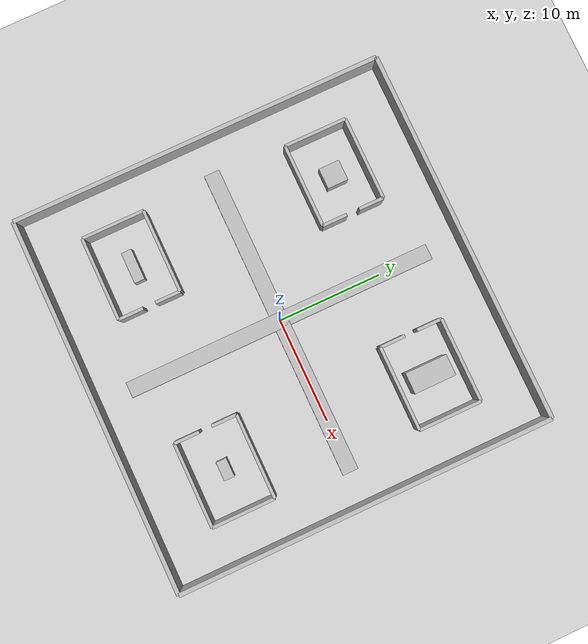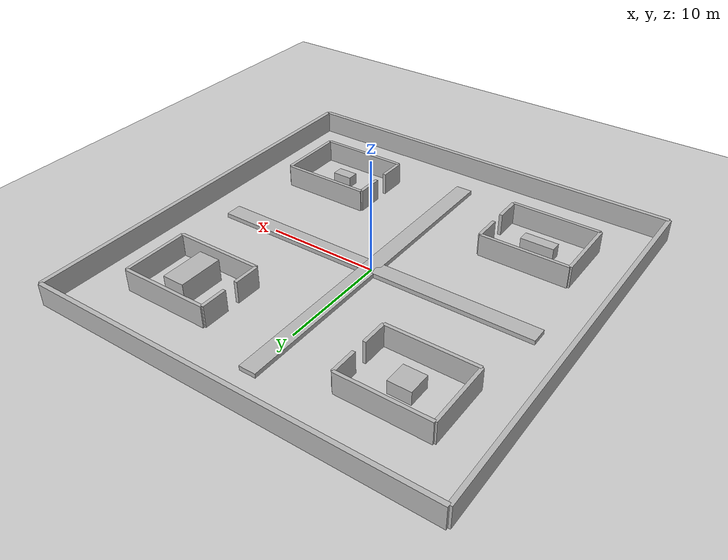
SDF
<sdf version="1.6">
<world name="realistic_factory">

<include><uri>model://ground_plane</uri></include>
<include><uri>model://sun</uri></include>

<!-- 外围厂房 -->
<model name="outer"><static>true</static>

<link name="n"><pose>0 18 1 0 0 0</pose>
<collision name="c"><geometry><box><size>36 0.4 2</size></box></geometry></collision>
<visual name="v"><geometry><box><size>36 0.4 2</size></box></geometry></visual>
</link>

<link name="s"><pose>0 -18 1 0 0 0</pose>
<collision name="c"><geometry><box><size>36 0.4 2</size></box></geometry></collision>
<visual name="v"><geometry><box><size>36 0.4 2</size></box></geometry></visual>
</link>

<link name="w"><pose>-18 0 1 0 0 0</pose>
<collision name="c"><geometry><box><size>0.4 36 2</size></box></geometry></collision>
<visual name="v"><geometry><box><size>0.4 36 2</size></box></geometry></visual>
</link>

<link name="e"><pose>18 0 1 0 0 0</pose>
<collision name="c"><geometry><box><size>0.4 36 2</size></box></geometry></collision>
<visual name="v"><geometry><box><size>0.4 36 2</size></box></geometry></visual>
</link>

</model>

<!-- ================= 十字传送带 ================= -->
<model name="conveyors"><static>true</static>

<link name="x"><pose>0 0 0.2 0 0 0</pose>
<collision name="c"><geometry><box><size>30 1.5 0.4</size></box></geometry></collision>
<visual name="v"><geometry><box><size>30 1.5 0.4</size></box></geometry></visual>
</link>

<link name="y"><pose>0 0 0.2 0 0 0</pose>
<collision name="c"><geometry><box><size>1.5 30 0.4</size></box></geometry></collision>
<visual name="v"><geometry><box><size>1.5 30 0.4</size></box></geometry></visual>
</link>

</model>

<!-- ================= 四车间 ================= -->
<!-- NW 机械加工 -->
<model name="machining"><static>true</static>
<pose>-10 10 0 0 0 0</pose>

<link name="north"><pose>0 3 1 0 0 0</pose>
<collision name="c"><geometry><box><size>8 0.3 2</size></box></geometry></collision>
<visual name="v"><geometry><box><size>8 0.3 2</size></box></geometry></visual>
</link>

<link name="south"><pose>0 -3 1 0 0 0</pose>
<collision name="c"><geometry><box><size>8 0.3 2</size></box></geometry></collision>
<visual name="v"><geometry><box><size>8 0.3 2</size></box></geometry></visual>
</link>

<link name="west"><pose>-4 0 1 0 0 1.57</pose>
<collision name="c"><geometry><box><size>6 0.3 2</size></box></geometry></collision>
<visual name="v"><geometry><box><size>6 0.3 2</size></box></geometry></visual>
</link>

<link name="east_left"><pose>4 1.8 1 0 0 1.57</pose>
<collision name="c"><geometry><box><size>2.4 0.3 2</size></box></geometry></collision>
<visual name="v"><geometry><box><size>2.4 0.3 2</size></box></geometry></visual>
</link>

<link name="east_right"><pose>4 -1.8 1 0 0 1.57</pose>
<collision name="c"><geometry><box><size>2.4 0.3 2</size></box></geometry></collision>
<visual name="v"><geometry><box><size>2.4 0.3 2</size></box></geometry></visual>
</link>

</model>

<model name="machine_block"><static>true</static>
<pose>-10 10 0.6 0 0 0</pose>
<link name="l"><collision name="c"><geometry><box><size>2 2 1.2</size></box></geometry></collision>
<visual name="v"><geometry><box><size>2 2 1.2</size></box></geometry></visual></link>
</model>

<!-- NE 仓储 -->
<model name="storage"><static>true</static>
<pose>10 10 0 0 0 0</pose>

<link name="north"><pose>0 3 1 0 0 0</pose>
<collision name="c"><geometry><box><size>8 0.3 2</size></box></geometry></collision>
<visual name="v"><geometry><box><size>8 0.3 2</size></box></geometry></visual>
</link>

<link name="south"><pose>0 -3 1 0 0 0</pose>
<collision name="c"><geometry><box><size>8 0.3 2</size></box></geometry></collision>
<visual name="v"><geometry><box><size>8 0.3 2</size></box></geometry></visual>
</link>

<link name="east"><pose>4 0 1 0 0 1.57</pose>
<collision name="c"><geometry><box><size>6 0.3 2</size></box></geometry></collision>
<visual name="v"><geometry><box><size>6 0.3 2</size></box></geometry></visual>
</link>

<link name="west_l"><pose>-4 1.8 1 0 0 1.57</pose>
<collision name="c"><geometry><box><size>2.4 0.3 2</size></box></geometry></collision>
<visual name="v"><geometry><box><size>2.4 0.3 2</size></box></geometry></visual>
</link>

<link name="west_r"><pose>-4 -1.8 1 0 0 1.57</pose>
<collision name="c"><geometry><box><size>2.4 0.3 2</size></box></geometry></collision>
<visual name="v"><geometry><box><size>2.4 0.3 2</size></box></geometry></visual>
</link>

</model>

<model name="rack"><static>true</static>
<pose>10 10 1 0 0 0</pose>
<link name="l"><collision name="c"><geometry><box><size>2 4 2</size></box></geometry></collision>
<visual name="v"><geometry><box><size>2 4 2</size></box></geometry></visual></link>
</model>

<!-- SW 装配 -->
<model name="assembly"><static>true</static>
<pose>-10 -10 0 0 0 0</pose>
<link name="north"><pose>0 3 1 0 0 0</pose>
<collision name="c"><geometry><box><size>8 0.3 2</size></box></geometry></collision>
<visual name="v"><geometry><box><size>8 0.3 2</size></box></geometry></visual>
</link>
<link name="south"><pose>0 -3 1 0 0 0</pose>
<collision name="c"><geometry><box><size>8 0.3 2</size></box></geometry></collision>
<visual name="v"><geometry><box><size>8 0.3 2</size></box></geometry></visual>
</link>
<link name="west"><pose>-4 0 1 0 0 1.57</pose>
<collision name="c"><geometry><box><size>6 0.3 2</size></box></geometry></collision>
<visual name="v"><geometry><box><size>6 0.3 2</size></box></geometry></visual>
</link>
<link name="east_l"><pose>4 1.8 1 0 0 1.57</pose>
<collision name="c"><geometry><box><size>2.4 0.3 2</size></box></geometry></collision>
<visual name="v"><geometry><box><size>2.4 0.3 2</size></box></geometry></visual>
</link>
<link name="east_r"><pose>4 -1.8 1 0 0 1.57</pose>
<collision name="c"><geometry><box><size>2.4 0.3 2</size></box></geometry></collision>
<visual name="v"><geometry><box><size>2.4 0.3 2</size></box></geometry></visual>
</link>
</model>

<model name="assembly_line"><static>true</static>
<pose>-10 -10 0.6 0 0 0</pose>
<link name="l"><collision name="c"><geometry><box><size>3 1 1.2</size></box></geometry></collision>
<visual name="v"><geometry><box><size>3 1 1.2</size></box></geometry></visual></link>
</model>

<!-- SE 实验室 -->
<model name="lab"><static>true</static>
<pose>10 -10 0 0 0 0</pose>
<link name="north"><pose>0 3 1 0 0 0</pose>
<collision name="c"><geometry><box><size>8 0.3 2</size></box></geometry></collision>
<visual name="v"><geometry><box><size>8 0.3 2</size></box></geometry></visual>
</link>
<link name="south"><pose>0 -3 1 0 0 0</pose>
<collision name="c"><geometry><box><size>8 0.3 2</size></box></geometry></collision>
<visual name="v"><geometry><box><size>8 0.3 2</size></box></geometry></visual>
</link>
<link name="east"><pose>4 0 1 0 0 1.57</pose>
<collision name="c"><geometry><box><size>6 0.3 2</size></box></geometry></collision>
<visual name="v"><geometry><box><size>6 0.3 2</size></box></geometry></visual>
</link>
<link name="west_l"><pose>-4 1.8 1 0 0 1.57</pose>
<collision name="c"><geometry><box><size>2.4 0.3 2</size></box></geometry></collision>
<visual name="v"><geometry><box><size>2.4 0.3 2</size></box></geometry></visual>
</link>
<link name="west_r"><pose>-4 -1.8 1 0 0 1.57</pose>
<collision name="c"><geometry><box><size>2.4 0.3 2</size></box></geometry></collision>
<visual name="v"><geometry><box><size>2.4 0.3 2</size></box></geometry></visual>
</link>
</model>

<model name="lab_table"><static>true</static>
<pose>10 -10 0.6 0 0 0</pose>
<link name="l"><collision name="c"><geometry><box><size>1.8 1 1</size></box></geometry></collision>
<visual name="v"><geometry><box><size>1.8 1 1</size></box></geometry></visual></link>
</model>

</world>
</sdf>
